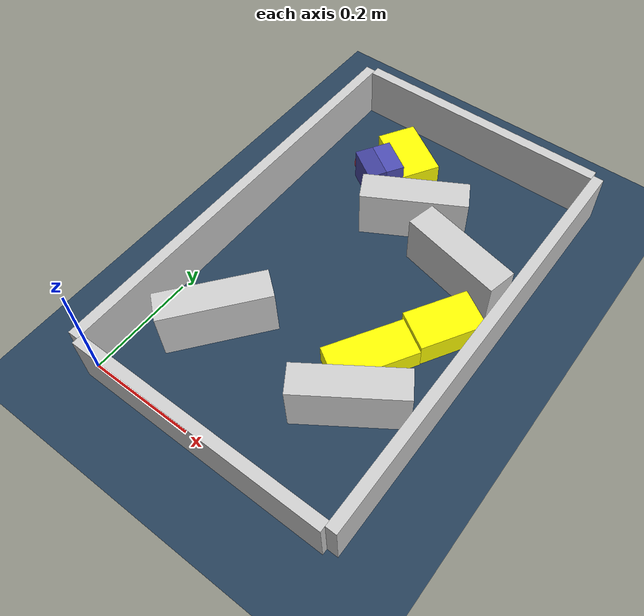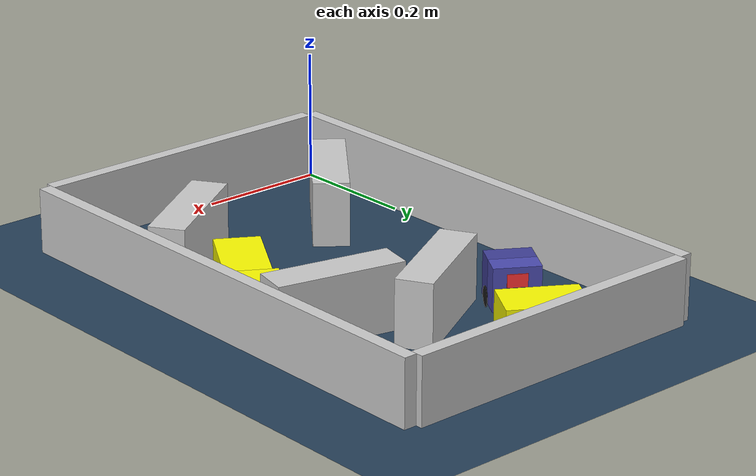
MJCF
<?xml version='1.0' encoding='utf-8'?>
<mujoco model="real_buildable">
  <compiler angle="degree" />
  <option timestep="0.002" integrator="implicitfast" iterations="100" cone="elliptic" />
  <default>
    <geom density="1" />
  </default>
  <asset>
    <texture builtin="gradient" height="3072" rgb1="0.3 0.5 0.7" rgb2="0 0 0" type="skybox" width="512" />
    <texture builtin="checker" height="300" mark="edge" markrgb="0.8 0.8 0.8" name="groundplane" rgb1="0.2 0.3 0.4" rgb2="0.1 0.2 0.3" type="2d" width="300" />
    <material name="groundplane" reflectance="0.2" texrepeat="5 5" texture="groundplane" texuniform="true" />
  </asset>
  <worldbody>
    <light dir="0 0 -1" directional="true" pos="0 0 1.5" />
    <geom name="floor" type="plane" condim="4" friction="0.5 0.005 0.001" material="groundplane" size="0 0 0.05" />
    <body name="walls">
      <geom name="wall_boundary_left" type="box" condim="4" friction="1.0 0.005 0.0001" rgba="0.8 0.8 0.8 1" pos="-0.010000 0.387500 0.050000" euler="0 0 0.000000" size="0.010000 0.397500 0.050000" />
      <geom name="wall_boundary_right" type="box" condim="4" friction="1.0 0.005 0.0001" rgba="0.8 0.8 0.8 1" pos="0.500000 0.387500 0.050000" euler="0 0 0.000000" size="0.010000 0.397500 0.050000" />
      <geom name="wall_boundary_bottom" type="box" condim="4" friction="1.0 0.005 0.0001" rgba="0.8 0.8 0.8 1" pos="0.245000 -0.010000 0.050000" euler="0 0 0.000000" size="0.245000 0.010000 0.050000" />
      <geom name="wall_boundary_top" type="box" condim="4" friction="1.0 0.005 0.0001" rgba="0.8 0.8 0.8 1" pos="0.245000 0.785000 0.050000" euler="0 0 0.000000" size="0.245000 0.010000 0.050000" />
      <geom name="wall_inner_1" type="box" condim="4" friction="1.0 0.005 0.0001" rgba="0.8 0.8 0.8 1" pos="0.112821 0.177057 0.050000" euler="0 0 51.144799" size="0.097500 0.027500 0.050000" />
      <geom name="wall_inner_2" type="box" condim="4" friction="1.0 0.005 0.0001" rgba="0.8 0.8 0.8 1" pos="0.385439 0.183719 0.050000" euler="0 0 33.390875" size="0.097500 0.027500 0.050000" />
      <geom name="wall_inner_3" type="box" condim="4" friction="1.0 0.005 0.0001" rgba="0.8 0.8 0.8 1" pos="0.249000 0.562000 0.050000" euler="0 0 28.900000" size="0.097500 0.027500 0.050000" />
      <geom name="wall_inner_4" type="box" condim="4" friction="1.0 0.005 0.0001" rgba="0.8 0.8 0.8 1" pos="0.383000 0.501000 0.050000" euler="0 0 167.300000" size="0.097500 0.027500 0.050000" />
    </body>
    <body name="car" pos="0.14255114357017173 0.60176847724872184 0.01" quat="0.87478548936154343 0 0 0.48451042053033794">
      <freejoint name="car_freejoint" />
      <inertial pos="0 0 0.0375" mass="0.35" diaginertia="0.000266 0.000266 0.000286" />
      <geom name="front_chassis_collision" type="box" pos="0.0175 0 0.0375" size="0.0175 0.035 0.0325" rgba="0.3 0.3 0.7 1" />
      <geom name="rear_chassis_collision" type="box" pos="-0.0175 0 0.0375" size="0.0175 0.035 0.0325" rgba="0.25 0.25 0.6 1" />
      <geom name="front_marker" type="box" pos="0.034 0 0.0505" size="0.002 0.015 0.01" rgba="1 0.2 0.2 1" contype="0" conaffinity="0" />
      <body name="rear_support_body" pos="-0.03 0 0.0025">
        <joint name="rear_caster_joint" type="ball" damping="0.0001" />
        <inertial pos="0 0 0" mass="0.025" diaginertia="0.000001 0.000001 0.000001" />
        <geom name="rear_support" type="sphere" pos="0 0 0" size="0.0025" friction="0 0 0" rgba="0.7 0.1 0.1 1" />
      </body>
      <body name="front_support_body" pos="0.03 0 0.0025">
        <joint name="front_caster_joint" type="ball" damping="0.0001" />
        <inertial pos="0 0 0" mass="0.025" diaginertia="0.000001 0.000001 0.000001" />
        <geom name="front_support" type="sphere" pos="0 0 0" size="0.0025" friction="0 0 0" rgba="0.1 0.7 0.1 1" />
      </body>
      <body name="left_wheel" pos="0 0.0375 0.015">
        <inertial pos="0 0 0" mass="0.05" diaginertia="0.000003 0.000006 0.000003" />
        <joint name="left_wheel_joint" type="hinge" axis="0 1 0" damping="0.01" armature="0.0001" />
        <geom name="left_wheel_collision" type="cylinder" size="0.015 0.0005" euler="90 0 0" rgba="0.1 0.1 0.1 1" />
      </body>
      <body name="right_wheel" pos="0 -0.0375 0.015">
        <inertial pos="0 0 0" mass="0.05" diaginertia="0.000003 0.000006 0.000003" />
        <joint name="right_wheel_joint" type="hinge" axis="0 1 0" damping="0.01" armature="0.0001" />
        <geom name="right_wheel_collision" type="cylinder" size="0.015 0.0005" euler="90 0 0" rgba="0.1 0.1 0.1 1" />
      </body>
    </body>
    <body name="obstacle_0_movable">
      <geom name="obstacle_0_movable" condim="4" pos="0.35915375181856629 0.27535852625011414 0.02" friction="1 0.005 0.0001" rgba="1 1 0 1" size="0.035000 0.075000 0.020000" type="box" mass="0.1" quat="0.27179572568061555 0 0 0.96235496751549399" />
      <joint type="free" />
    </body>
    <body name="obstacle_1_movable">
      <geom name="obstacle_1_movable" condim="4" pos="0.1582615737551617 0.6783287008055503 0.025000000000000001" friction="1 0.005 0.0001" rgba="1 1 0 1" size="0.037500 0.060000 0.025000" type="box" mass="0.1" quat="0.87301610862152335 0 0 0.48769137175813626" />
      <joint type="free" />
    </body>
    <body name="obstacle_2_movable">
      <geom name="obstacle_2_movable" condim="4" pos="0.42672812154720302 0.39237167623878189 0.025000000000000001" friction="1 0.005 0.0001" rgba="1 1 0 1" size="0.037500 0.060000 0.025000" type="box" mass="0.1" quat="0.27064825259296155 0 0 0.96267830731162551" />
      <joint type="free" />
    </body>
    <site name="goal" type="sphere" pos="0.080000 0.640000 0.0" size="0.02" rgba="1 0 0 0.5" />
  </worldbody>
  <actuator>
    <velocity name="left_wheel_drive" joint="left_wheel_joint" ctrlrange="-25 25" kv="0.75" forcerange="-0.5 0.5" />
    <velocity name="right_wheel_drive" joint="right_wheel_joint" ctrlrange="-25 25" kv="0.75" forcerange="-0.5 0.5" />
  </actuator>
</mujoco>
